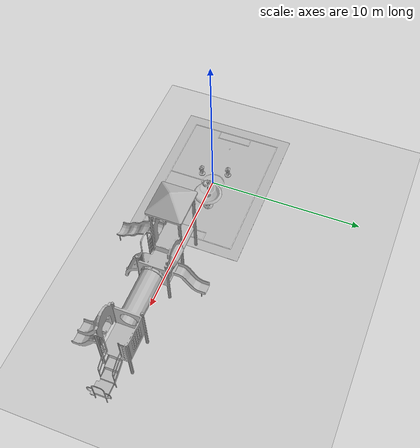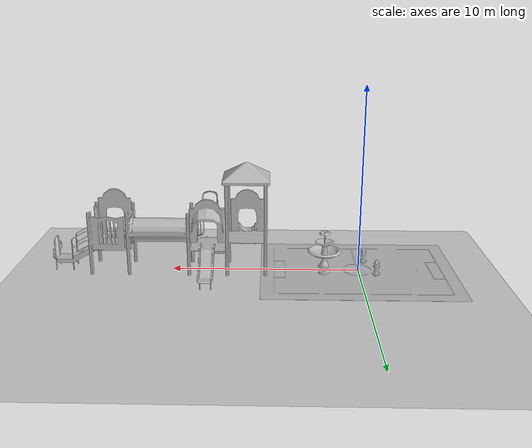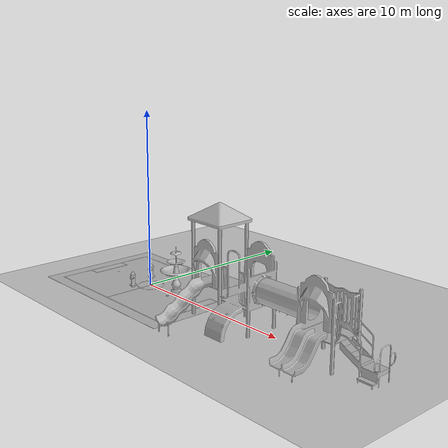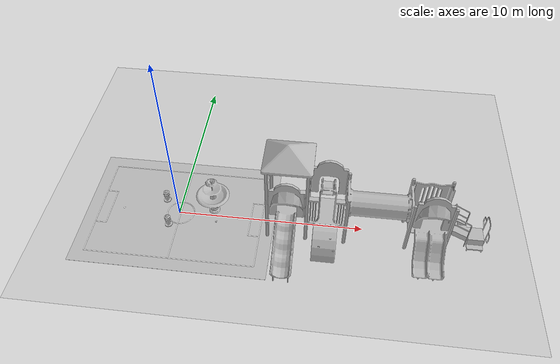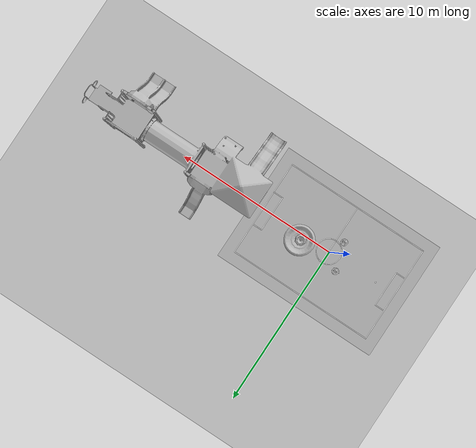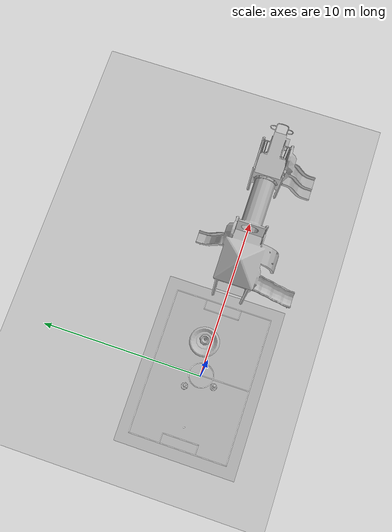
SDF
<sdf version="1.7">
 <world name="default">
  <light name="sun" type="directional">
   <pose>0 0 10 0 -0 0</pose>
   <diffuse>0.8 0.8 0.8 1</diffuse>
   <specular>0.2 0.2 0.2 1</specular>
   <attenuation>
    <range>1000</range>
    <constant>0.9</constant>
    <linear>0.01</linear>
    <quadratic>0.001</quadratic>
   </attenuation>
   <direction>-0.5 0.1 -0.9</direction>
   <spot><inner_angle>0</inner_angle><outer_angle>0</outer_angle><falloff>0</falloff></spot>
  </light>
  <model name="ground_plane">
   <static>1</static>
   <link name="link">
    <collision name="collision">
     <geometry><plane><normal>0 0 1</normal><size>100 100</size></plane></geometry>
     <surface><friction><ode><mu>100</mu><mu2>50</mu2></ode></friction></surface>
    </collision>
    <visual name="visual">
     <cast_shadows>0</cast_shadows>
     <geometry><plane><normal>0 0 1</normal><size>100 100</size></plane></geometry>
     <material>
      <script><uri>file://media/materials/scripts/gazebo.material</uri><name>Gazebo/Grey</name></script>
     </material>
    </visual>
   </link>
  </model>
  <gravity>0 0 -9.8</gravity>
  <magnetic_field>6e-06 2.3e-05 -4.2e-05</magnetic_field>
  <atmosphere type="adiabatic"/>
  <physics type="ode">
   <max_step_size>0.001</max_step_size>
   <real_time_factor>1</real_time_factor>
   <real_time_update_rate>1000</real_time_update_rate>
  </physics>
  <scene><ambient>0.4 0.4 0.4 1</ambient><background>0.7 0.7 0.7 1</background><shadows>1</shadows></scene>
  <audio><device>default</device></audio>
  <spherical_coordinates>
   <surface_model>EARTH_WGS84</surface_model>
   <latitude_deg>0</latitude_deg>
   <longitude_deg>0</longitude_deg>
   <elevation>0</elevation>
   <heading_deg>0</heading_deg>
  </spherical_coordinates>
  <model name="my_bot">
   <link name="base_link">
    <inertial>
     <pose>0.036397 0 0.010411 0 -0 0</pose>
     <mass>0.73</mass>
     <inertia>
      <ixx>0.00042326</ixx>
      <ixy>0</ixy>
      <ixz>0.000128219</ixz>
      <iyy>0.000716648</iyy>
      <iyz>0</iyz>
      <izz>0.000744221</izz>
     </inertia>
    </inertial>
    <collision name="base_link_fixed_joint_lump__chassis_collision">
     <pose>0.029 0 0.015 0 -0 0</pose>
     <geometry><box><size>0.09 0.07 0.04</size></box></geometry>
    </collision>
    <collision name="base_link_fixed_joint_lump__caster_wheel_collision_1">
     <pose>0.059 0 -0.007 0 -0 0</pose>
     <geometry><sphere><radius>0.015</radius></sphere></geometry>
     <surface><friction><ode><mu>0.001</mu><mu2>0.001</mu2></ode></friction></surface>
    </collision>
    <collision name="base_link_fixed_joint_lump__chassis_top_collision_2">
     <pose>0.009 0 0.05 0 -0 0</pose>
     <geometry><box><size>0.05 0.07 0.04</size></box></geometry>
    </collision>
    <visual name="base_link_fixed_joint_lump__chassis_visual">
     <pose>0.029 0 0.015 0 -0 0</pose>
     <geometry><box><size>0.09 0.07 0.04</size></box></geometry>
     <material>
      <script><name>Gazebo/White</name><uri>file://media/materials/scripts/gazebo.material</uri></script>
     </material>
    </visual>
    <visual name="base_link_fixed_joint_lump__camera_link_visual_1">
     <pose>0.073 0 0.015 0 -0 0</pose>
     <geometry><box><size>0.005 0.015 0.015</size></box></geometry>
     <material>
      <script><name>Gazebo/Black</name><uri>file://media/materials/scripts/gazebo.material</uri></script>
     </material>
    </visual>
    <visual name="base_link_fixed_joint_lump__caster_wheel_visual_2">
     <pose>0.059 0 -0.007 0 -0 0</pose>
     <geometry><sphere><radius>0.015</radius></sphere></geometry>
     <material>
      <script><name>Gazebo/Black</name><uri>file://media/materials/scripts/gazebo.material</uri></script>
     </material>
    </visual>
    <visual name="base_link_fixed_joint_lump__chassis_top_visual_3">
     <pose>0.009 0 0.05 0 -0 0</pose>
     <geometry><box><size>0.05 0.07 0.04</size></box></geometry>
     <material>
      <script><name>Gazebo/White</name><uri>file://media/materials/scripts/gazebo.material</uri></script>
     </material>
    </visual>
    <sensor name="camera" type="camera">
     <visualize>1</visualize>
     <update_rate>10</update_rate>
     <camera>
      <horizontal_fov>1.089</horizontal_fov>
      <image><format>R8G8B8</format><width>640</width><height>480</height></image>
      <clip><near>0.05</near><far>8</far></clip>
     </camera>
     <plugin name="camera_controller" filename="libgazebo_ros_camera.so">
      <frame_name>camera_link_optical</frame_name>
     </plugin>
     <pose>0.073 0 0.015 0 -0 0</pose>
    </sensor>
   </link>
   <joint name="left_wheel_joint" type="revolute">
    <pose relative_to="base_link">0 0.048 0 -1.5708 0 0</pose>
    <parent>base_link</parent>
    <child>left_wheel</child>
    <axis>
     <xyz>0 0 1</xyz>
     <limit><lower>-1e+16</lower><upper>1e+16</upper></limit>
     <dynamics><spring_reference>0</spring_reference><spring_stiffness>0</spring_stiffness></dynamics>
    </axis>
   </joint>
   <link name="left_wheel">
    <pose relative_to="left_wheel_joint">0 0 0 0 -0 0</pose>
    <inertial>
     <mass>0.3</mass>
     <inertia>
      <ixx>4.3525e-05</ixx>
      <ixy>0</ixy>
      <ixz>0</ixz>
      <iyy>4.3525e-05</iyy>
      <iyz>0</iyz>
      <izz>7.26e-05</izz>
     </inertia>
    </inertial>
    <collision name="left_wheel_collision">
     <geometry><sphere><radius>0.022</radius></sphere></geometry>
    </collision>
    <visual name="left_wheel_visual">
     <geometry><cylinder><length>0.017</length><radius>0.022</radius></cylinder></geometry>
     <material>
      <script><name>Gazebo/Black</name><uri>file://media/materials/scripts/gazebo.material</uri></script>
     </material>
    </visual>
   </link>
   <joint name="right_wheel_joint" type="revolute">
    <pose relative_to="base_link">0 -0.048 0 1.5708 -0 0</pose>
    <parent>base_link</parent>
    <child>right_wheel</child>
    <axis>
     <xyz>0 0 -1</xyz>
     <limit><lower>-1e+16</lower><upper>1e+16</upper></limit>
     <dynamics><spring_reference>0</spring_reference><spring_stiffness>0</spring_stiffness></dynamics>
    </axis>
   </joint>
   <link name="right_wheel">
    <pose relative_to="right_wheel_joint">0 0 0 0 -0 0</pose>
    <inertial>
     <mass>0.3</mass>
     <inertia>
      <ixx>4.3525e-05</ixx>
      <ixy>0</ixy>
      <ixz>0</ixz>
      <iyy>4.3525e-05</iyy>
      <iyz>0</iyz>
      <izz>7.26e-05</izz>
     </inertia>
    </inertial>
    <collision name="right_wheel_collision">
     <geometry><sphere><radius>0.022</radius></sphere></geometry>
    </collision>
    <visual name="right_wheel_visual">
     <geometry><cylinder><length>0.017</length><radius>0.022</radius></cylinder></geometry>
     <material>
      <script><name>Gazebo/Black</name><uri>file://media/materials/scripts/gazebo.material</uri></script>
     </material>
    </visual>
   </link>
   <static>0</static>
   <plugin name="gazebo_ros2_control" filename="libgazebo_ros2_control.so">
    <parameters>/home/pc/bot_ws/install/pi_bot/share/pi_bot/config/my_controllers.yaml</parameters>
   </plugin>
   <pose>2.12534 -0.419095 0.031998 -4.5e-05 -3.6e-05 -3.02764</pose>
  </model>
  <model name="RoboCup 14 SPL Field">
   <static>1</static>
   <link name="field">
    <pose>0 0 0.01 0 -0 0</pose>
    <collision name="collision">
     <geometry><plane><normal>0 0 1</normal><size>10.4 7.4</size></plane></geometry>
     <surface><friction><ode><mu>100</mu><mu2>50</mu2></ode></friction></surface>
    </collision>
    <visual name="carpet">
     <cast_shadows>0</cast_shadows>
     <geometry><plane><normal>0 0 1</normal><size>10.4 7.4</size></plane></geometry>
     <material>
      <script>
       <uri>model://robocup09_spl_field/materials/scripts/</uri>
       <uri>model://robocup09_spl_field/materials/textures/</uri>
       <name>RoboCup/Carpet</name>
      </script>
     </material>
    </visual>
    <visual name="sideline_1">
     <pose>0 3 0.011 0 -0 0</pose>
     <cast_shadows>0</cast_shadows>
     <geometry><plane><normal>0 0 1</normal><size>9.05 0.05</size></plane></geometry>
     <material>
      <script><uri>file://media/materials/scripts/gazebo.material</uri><name>Gazebo/White</name></script>
     </material>
    </visual>
    <visual name="sideline_2">
     <pose>0 -3 0.011 0 -0 0</pose>
     <cast_shadows>0</cast_shadows>
     <geometry><plane><normal>0 0 1</normal><size>9.05 0.05</size></plane></geometry>
     <material>
      <script><uri>file://media/materials/scripts/gazebo.material</uri><name>Gazebo/White</name></script>
     </material>
    </visual>
    <visual name="endline_1">
     <pose>-4.5 0 0.011 0 -0 0</pose>
     <cast_shadows>0</cast_shadows>
     <geometry><plane><normal>0 0 1</normal><size>0.05 6.05</size></plane></geometry>
     <material>
      <script><uri>file://media/materials/scripts/gazebo.material</uri><name>Gazebo/White</name></script>
     </material>
    </visual>
    <visual name="endline_2">
     <pose>4.5 0 0.011 0 -0 0</pose>
     <cast_shadows>0</cast_shadows>
     <geometry><plane><normal>0 0 1</normal><size>0.05 6.05</size></plane></geometry>
     <material>
      <script><uri>file://media/materials/scripts/gazebo.material</uri><name>Gazebo/White</name></script>
     </material>
    </visual>
    <visual name="halfway_line">
     <pose>0 0 0.011 0 -0 0</pose>
     <cast_shadows>0</cast_shadows>
     <geometry><plane><normal>0 0 1</normal><size>0.05 6.05</size></plane></geometry>
     <material>
      <script><uri>file://media/materials/scripts/gazebo.material</uri><name>Gazebo/White</name></script>
     </material>
    </visual>
    <visual name="area_1_line_a">
     <pose>-3.9 0 0.011 0 -0 0</pose>
     <cast_shadows>0</cast_shadows>
     <geometry><plane><normal>0 0 1</normal><size>0.05 2.25</size></plane></geometry>
     <material>
      <script><uri>file://media/materials/scripts/gazebo.material</uri><name>Gazebo/White</name></script>
     </material>
    </visual>
    <visual name="area_2_line_a">
     <pose>-4.2 1.1 0.011 0 -0 0</pose>
     <cast_shadows>0</cast_shadows>
     <geometry><plane><normal>0 0 1</normal><size>0.65 0.05</size></plane></geometry>
     <material>
      <script><uri>file://media/materials/scripts/gazebo.material</uri><name>Gazebo/White</name></script>
     </material>
    </visual>
    <visual name="area_3_line_a">
     <pose>-4.2 -1.1 0.011 0 -0 0</pose>
     <cast_shadows>0</cast_shadows>
     <geometry><plane><normal>0 0 1</normal><size>0.65 0.05</size></plane></geometry>
     <material>
      <script><uri>file://media/materials/scripts/gazebo.material</uri><name>Gazebo/White</name></script>
     </material>
    </visual>
    <visual name="area_1_line_b">
     <pose>3.9 0 0.011 0 -0 0</pose>
     <cast_shadows>0</cast_shadows>
     <geometry><plane><normal>0 0 1</normal><size>0.05 2.25</size></plane></geometry>
     <material>
      <script><uri>file://media/materials/scripts/gazebo.material</uri><name>Gazebo/White</name></script>
     </material>
    </visual>
    <visual name="area_2_line_b">
     <pose>4.2 1.1 0.011 0 -0 0</pose>
     <cast_shadows>0</cast_shadows>
     <geometry><plane><normal>0 0 1</normal><size>0.65 0.05</size></plane></geometry>
     <material>
      <script><uri>file://media/materials/scripts/gazebo.material</uri><name>Gazebo/White</name></script>
     </material>
    </visual>
    <visual name="area_3_line_b">
     <pose>4.2 -1.1 0.011 0 -0 0</pose>
     <cast_shadows>0</cast_shadows>
     <geometry><plane><normal>0 0 1</normal><size>0.65 0.05</size></plane></geometry>
     <material>
      <script><uri>file://media/materials/scripts/gazebo.material</uri><name>Gazebo/White</name></script>
     </material>
    </visual>
    <visual name="penalty_a">
     <pose>-3.2 0 0.01 0 -0 0</pose>
     <cast_shadows>0</cast_shadows>
     <geometry><cylinder><radius>0.05</radius><length>0.0005</length></cylinder></geometry>
     <material>
      <script><uri>file://media/materials/scripts/gazebo.material</uri><name>Gazebo/White</name></script>
     </material>
    </visual>
    <visual name="penalty_b">
     <pose>3.2 0 0.01 0 -0 0</pose>
     <cast_shadows>0</cast_shadows>
     <geometry><cylinder><radius>0.05</radius><length>0.0005</length></cylinder></geometry>
     <material>
      <script><uri>file://media/materials/scripts/gazebo.material</uri><name>Gazebo/White</name></script>
     </material>
    </visual>
    <visual name="center_point">
     <pose>0 0 0.01 0 -0 0</pose>
     <cast_shadows>0</cast_shadows>
     <geometry><cylinder><radius>0.05</radius><length>0.0005</length></cylinder></geometry>
     <material>
      <script><uri>file://media/materials/scripts/gazebo.material</uri><name>Gazebo/White</name></script>
     </material>
    </visual>
    <visual name="center_circle">
     <pose>0 0 0.005 0 -0 0</pose>
     <cast_shadows>0</cast_shadows>
     <geometry>
      <mesh><scale>1 1 0.75</scale><uri>model://robocup14_spl_field/meshes/circle.dae</uri></mesh>
     </geometry>
     <material>
      <script><uri>file://media/materials/scripts/gazebo.material</uri><name>Gazebo/White</name></script>
     </material>
    </visual>
   </link>
   <pose>0.053192 -0.023197 0 0 -0 0</pose>
  </model>
  <model name="fire_hydrant">
   <static>1</static>
   <link name="link">
    <collision name="collision">
     <geometry><mesh><uri>model://fire_hydrant/meshes/fire_hydrant.dae</uri></mesh></geometry>
    </collision>
    <visual name="visual">
     <geometry><mesh><uri>model://fire_hydrant/meshes/fire_hydrant.dae</uri></mesh></geometry>
    </visual>
   </link>
   <pose>-0.861261 0.72571 0 0 -0 0</pose>
  </model>
  <model name="fire_hydrant_0">
   <static>1</static>
   <link name="link">
    <collision name="collision">
     <geometry><mesh><uri>model://fire_hydrant/meshes/fire_hydrant.dae</uri></mesh></geometry>
    </collision>
    <visual name="visual">
     <geometry><mesh><uri>model://fire_hydrant/meshes/fire_hydrant.dae</uri></mesh></geometry>
    </visual>
   </link>
   <pose>-0.382617 -0.931849 0 0 -0 0</pose>
  </model>
  <model name="fountain">
   <static>1</static>
   <link name="link">
    <collision name="collision">
     <geometry><mesh><uri>model://fountain/meshes/fountain.dae</uri></mesh></geometry>
    </collision>
    <visual name="visual">
     <geometry><mesh><uri>model://fountain/meshes/fountain.dae</uri></mesh></geometry>
    </visual>
   </link>
   <pose>1.871 0.412477 0 0 -0 0</pose>
  </model>
  <model name="playground">
   <static>1</static>
   <link name="link">
    <collision name="collision">
     <geometry><mesh><uri>model://playground/meshes/playground.dae</uri></mesh></geometry>
    </collision>
    <visual name="visual">
     <geometry><mesh><uri>model://playground/meshes/playground.dae</uri></mesh></geometry>
    </visual>
   </link>
   <pose>10.5483 -0.49136 0 0 -0 0</pose>
  </model>
 </world>
</sdf>
